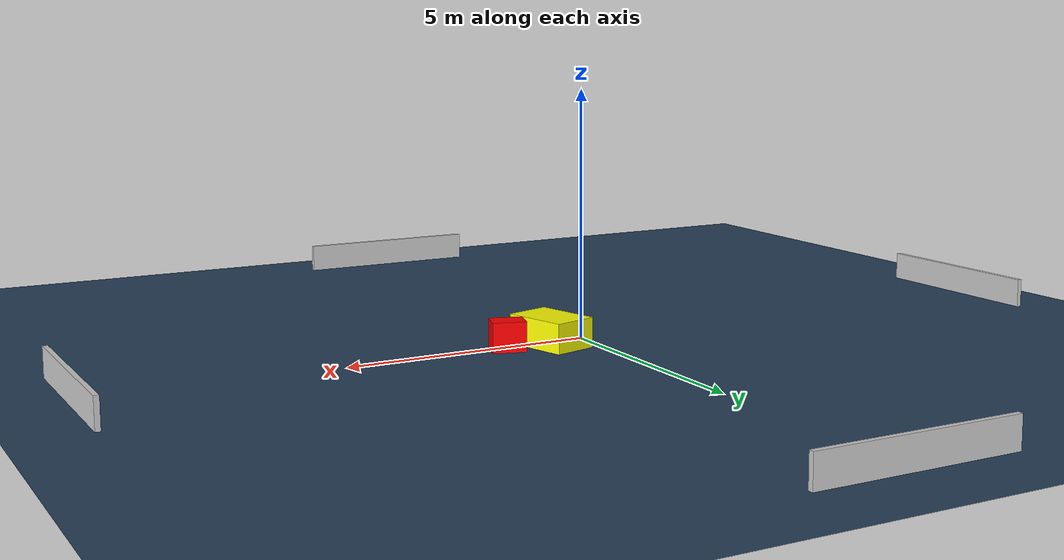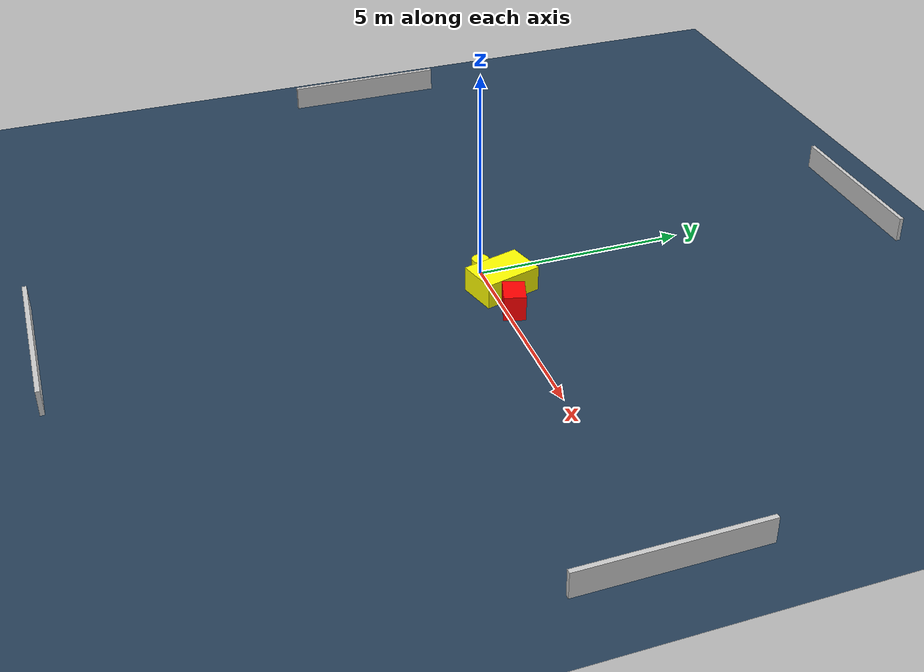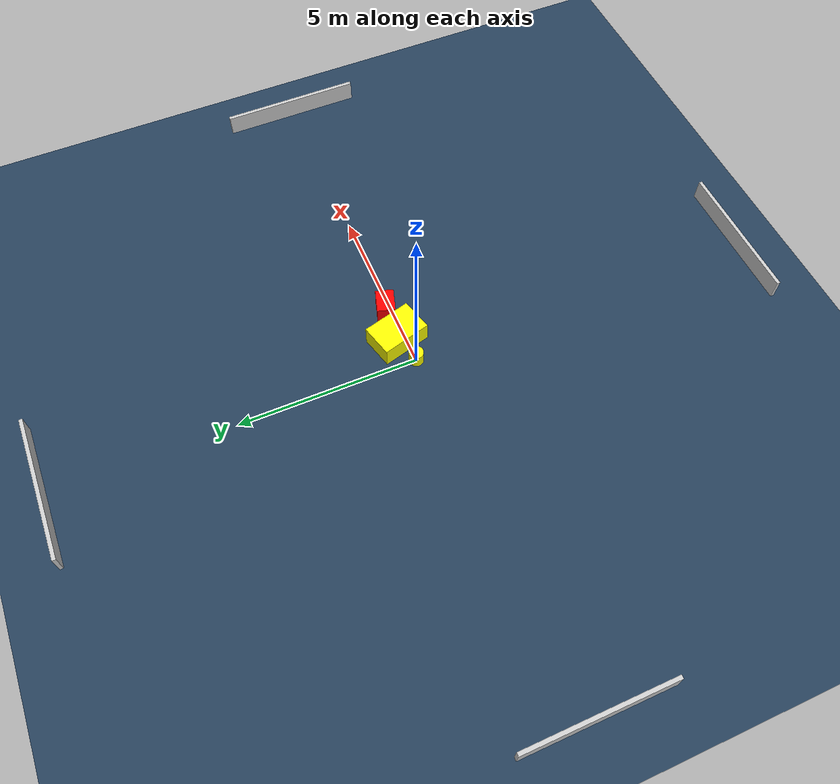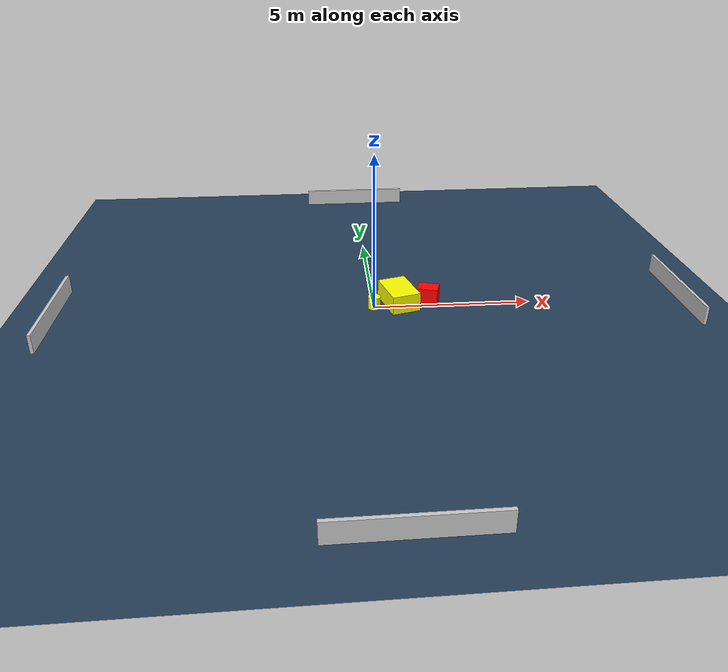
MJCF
<?xml version="1.0" ?>
<mujoco model="generated_environment">
  <option timestep="0.01" integrator="RK4" cone="elliptic"/>
  <default>
    <geom density="1"/>
  </default>
  <asset>
    <texture builtin="gradient" height="3072" name="skybox" rgb1="0.3 0.5 0.7" rgb2="0 0 0" type="skybox" width="512"/>
    <texture builtin="checker" height="300" name="groundplane" rgb1="0.2 0.3 0.4" rgb2="0.1 0.2 0.3" type="2d" width="300"/>
    <material name="groundplane" reflectance="0.2" texrepeat="5 5" texture="groundplane"/>
  </asset>
  <worldbody>
    <light dir="0 0 -1" directional="true" pos="0 0 1.5"/>
    <geom condim="3" friction="0.5 0.005 0.001" material="groundplane" name="floor" pos="0 0 0" size="0 0 0.05" type="plane"/>
    <body name="walls">
      <geom name="wall_1" condim="4" pos="-10.0 0.0 0.3" rgba="0.800000011920929 0.800000011920929 0.800000011920929 1.0" size="0.05 2.0 0.3" type="box"/>
      <geom name="wall_2" condim="4" pos="10.0 0.0 0.3" rgba="0.800000011920929 0.800000011920929 0.800000011920929 1.0" size="0.05 2.0 0.3" type="box"/>
      <geom name="wall_3" condim="4" pos="0.0 -10.0 0.3" rgba="0.800000011920929 0.800000011920929 0.800000011920929 1.0" size="2.0 0.05 0.3" type="box"/>
      <geom name="wall_4" condim="4" pos="0.0 10.0 0.3" rgba="0.800000011920929 0.800000011920929 0.800000011920929 1.0" size="2.0 0.05 0.3" type="box"/>
    </body>
    <body name="robot">
      <joint name="joint_x" type="slide" pos="0 0 0" axis="1 0 0"/>
      <joint name="joint_y" type="slide" pos="0 0 0" axis="0 1 0"/>
      <geom name="robot" type="cylinder" pos="0.0 0.0 0.2" size="0.2 0.2 0.0" mass="5.0" friction="1.0 0.005 0.0001" condim="4" rgba="1.0 1.0 0.0 1.0"/>
    </body>
    <body name="obstacle_1_movable">
      <geom name="obstacle_1_movable" condim="4" pos="0.8094321353636754 0.22547371797067361 0.3" euler="0 0 195.14247183690583" friction="0.0 0.005 0.001" rgba="1.0 1.0 0.0 1.0" size="0.4626513418488773 0.6898172792935909 0.3" type="box" mass="0.1"/>
      <joint type="free"/>
    </body>
    <body name="obstacle_2_static">
      <geom name="obstacle_2_static" condim="4" pos="1.7482557772152105 0.1674915040255539 0.3" euler="0 0 342.95652406068643" friction="0.0 0.005 0.001" rgba="1.0 0.0 0.0 1.0" size="0.3337086253599836 0.2515891325347272 0.3" type="box"/>
    </body>
  </worldbody>
  <actuator>
    <motor name="actuator_x" joint="joint_x" gear="1" ctrlrange="-1 1"/>
    <motor name="actuator_y" joint="joint_y" gear="1" ctrlrange="-1 1"/>
  </actuator>
</mujoco>
